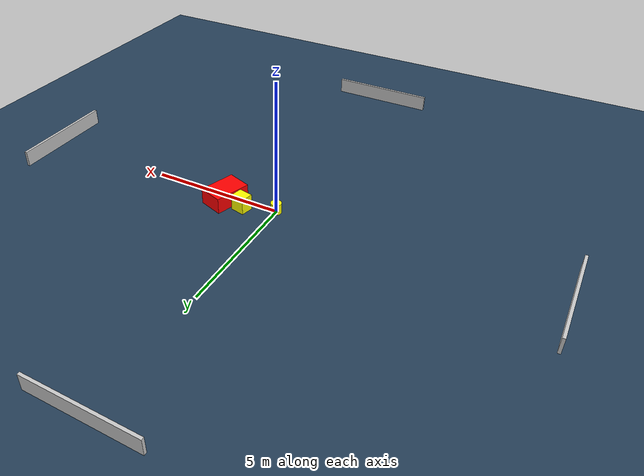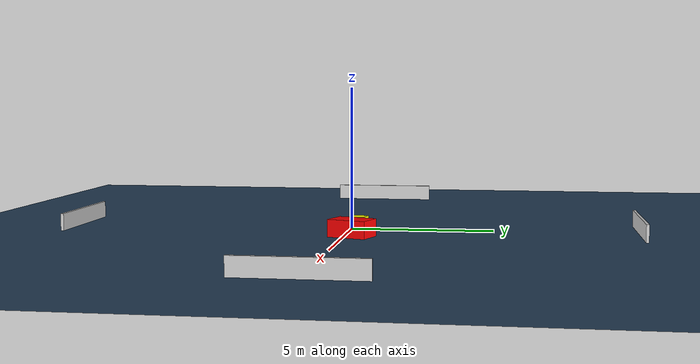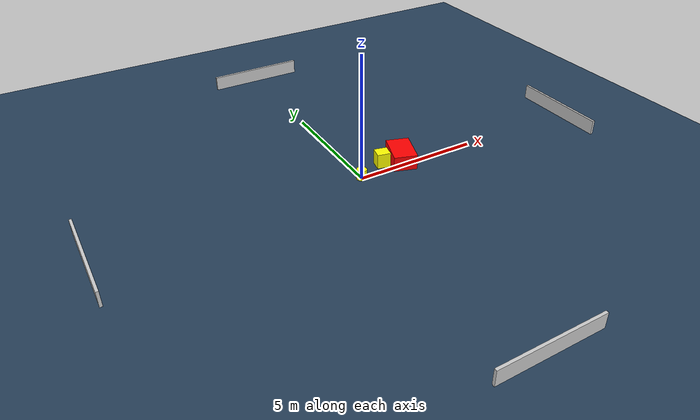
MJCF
<?xml version="1.0" ?>
<mujoco model="generated_environment">
  <option timestep="0.01" integrator="RK4" cone="elliptic"/>
  <default>
    <geom density="1"/>
  </default>
  <asset>
    <texture builtin="gradient" height="3072" name="skybox" rgb1="0.3 0.5 0.7" rgb2="0 0 0" type="skybox" width="512"/>
    <texture builtin="checker" height="300" name="groundplane" rgb1="0.2 0.3 0.4" rgb2="0.1 0.2 0.3" type="2d" width="300"/>
    <material name="groundplane" reflectance="0.2" texrepeat="5 5" texture="groundplane"/>
  </asset>
  <worldbody>
    <light dir="0 0 -1" directional="true" pos="0 0 1.5"/>
    <geom condim="3" friction="0.5 0.005 0.001" material="groundplane" name="floor" pos="0 0 0" size="0 0 0.05" type="plane"/>
    <body name="walls">
      <geom name="wall_1" condim="4" pos="-10.0 0.0 0.3" rgba="0.800000011920929 0.800000011920929 0.800000011920929 1.0" size="0.05 2.0 0.3" type="box"/>
      <geom name="wall_2" condim="4" pos="10.0 0.0 0.3" rgba="0.800000011920929 0.800000011920929 0.800000011920929 1.0" size="0.05 2.0 0.3" type="box"/>
      <geom name="wall_3" condim="4" pos="0.0 -10.0 0.3" rgba="0.800000011920929 0.800000011920929 0.800000011920929 1.0" size="2.0 0.05 0.3" type="box"/>
      <geom name="wall_4" condim="4" pos="0.0 10.0 0.3" rgba="0.800000011920929 0.800000011920929 0.800000011920929 1.0" size="2.0 0.05 0.3" type="box"/>
    </body>
    <body name="robot">
      <joint name="joint_x" type="slide" pos="0 0 0" axis="1 0 0"/>
      <joint name="joint_y" type="slide" pos="0 0 0" axis="0 1 0"/>
      <geom name="robot" type="cylinder" pos="0.0 0.0 0.2" size="0.2 0.2 0.0" mass="5.0" friction="1.0 0.005 0.0001" condim="4" rgba="1.0 1.0 0.0 1.0"/>
    </body>
    <body name="obstacle_1_movable">
      <geom name="obstacle_1_movable" condim="4" pos="1.1698729411788384 0.4249201868058914 0.3" euler="0 0 77.91076731178437" friction="0.0 0.005 0.001" rgba="1.0 1.0 0.0 1.0" size="0.24082337952870442 0.2650960859829825 0.3" type="box" mass="0.1"/>
      <joint type="free"/>
    </body>
    <body name="obstacle_2_static">
      <geom name="obstacle_2_static" condim="4" pos="1.9555456514978087 0.27355231070917113 0.3" euler="0 0 341.5657926787076" friction="0.0 0.005 0.001" rgba="1.0 0.0 0.0 1.0" size="0.4606859877244352 0.6877720024362657 0.3" type="box"/>
    </body>
  </worldbody>
  <actuator>
    <motor name="actuator_x" joint="joint_x" gear="1" ctrlrange="-1 1"/>
    <motor name="actuator_y" joint="joint_y" gear="1" ctrlrange="-1 1"/>
  </actuator>
</mujoco>
